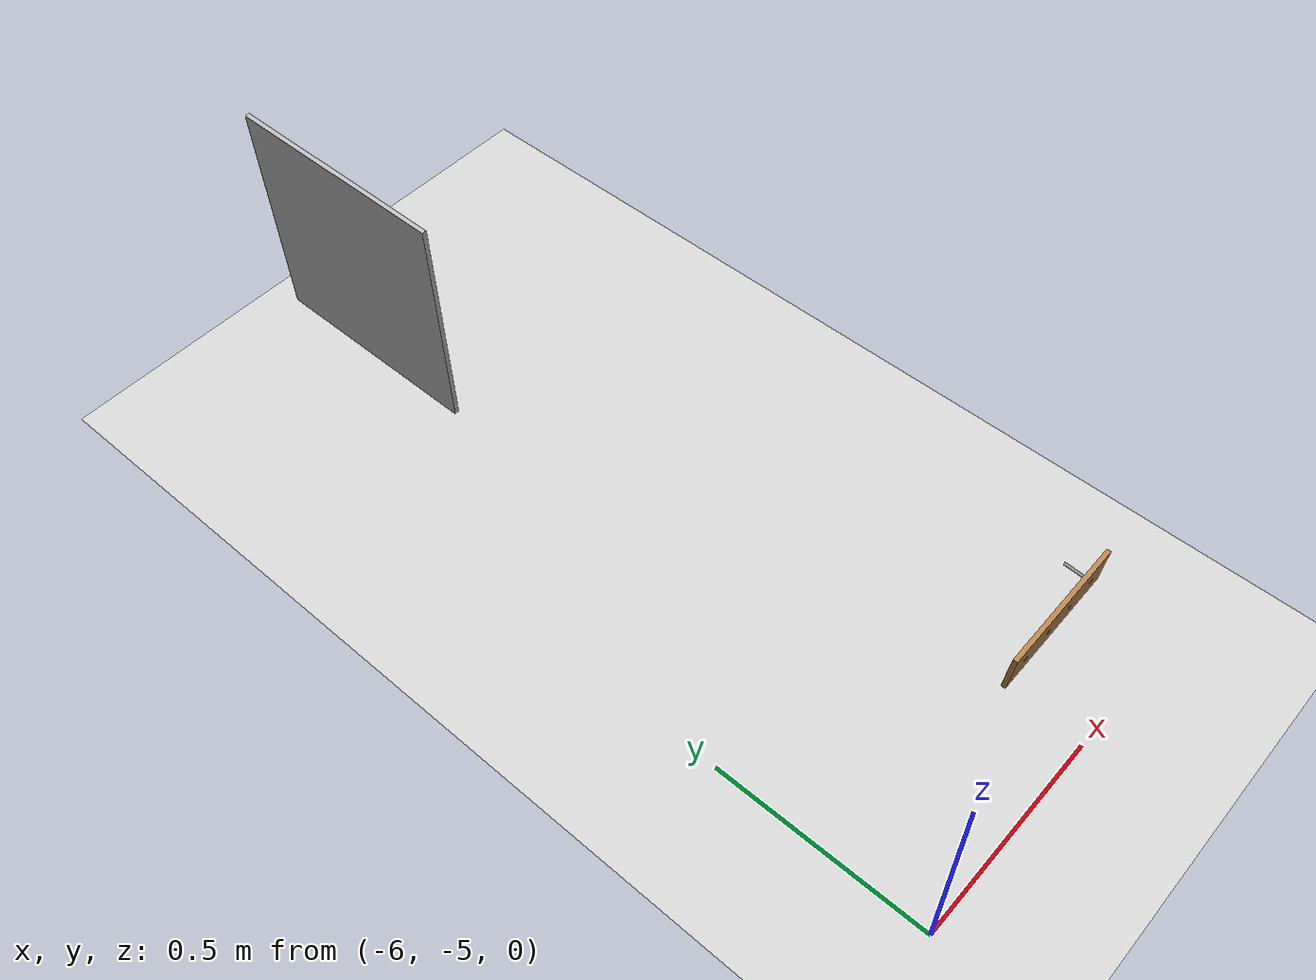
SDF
<sdf version="1.6">
 <world name="default">
  <model name="ground_plane">
   <static>1</static>
   <link name="link">
    <collision name="collision">
     <geometry><plane><normal>0 0 1</normal><size>100 100</size></plane></geometry>
     <surface><friction><ode><mu>100</mu><mu2>50</mu2></ode></friction></surface>
    </collision>
    <visual name="visual">
     <cast_shadows>0</cast_shadows>
     <geometry><plane><normal>0 0 1</normal><size>100 100</size></plane></geometry>
     <material>
      <script><uri>file://media/materials/scripts/gazebo.material</uri><name>Gazebo/Grey</name></script>
     </material>
    </visual>
   </link>
  </model>
  <model name="metal_peg_board_0">
   <link name="base">
    <pose>0 0 0.00523 0 -0 0</pose>
    <inertial>
     <mass>0.2765</mass>
     <inertia>
      <ixx>0.0025148</ixx>
      <ixy>0</ixy>
      <ixz>0</ixz>
      <iyy>0.00024037</iyy>
      <iyz>0</iyz>
      <izz>0.00275013</izz>
     </inertia>
    </inertial>
    <collision name="collision">
     <geometry><box><size>0.1016 0.3302 0.01046</size></box></geometry>
     <surface>
      <contact>
       <poissons_ratio>0.347</poissons_ratio>
       <elastic_modulus>8.8e+09</elastic_modulus>
       <ode><kp>100000</kp><kd>100</kd><max_vel>100</max_vel><min_depth>0.001</min_depth></ode>
      </contact>
      <friction>
       <torsional>
        <coefficient>1</coefficient>
        <use_patch_radius>0</use_patch_radius>
        <surface_radius>0.01</surface_radius>
       </torsional>
      </friction>
     </surface>
    </collision>
    <visual name="visual">
     <geometry><box><size>0.1016 0.3302 0.01046</size></box></geometry>
     <material>
      <script><uri>file://media/materials/scripts/gazebo.material</uri><name>Gazebo/Wood</name></script>
     </material>
    </visual>
    <visual name="tee_nut_1">
     <pose>0 -0.116 0 0 -0 0</pose>
     <geometry><cylinder><radius>0.00635</radius><length>0.0105646</length></cylinder></geometry>
     <material>
      <script><uri>file://media/materials/scripts/gazebo.material</uri><name>Gazebo/Grey</name></script>
     </material>
    </visual>
    <visual name="tee_nut_2">
     <pose>0 -0.038 0 0 -0 0</pose>
     <geometry><cylinder><radius>0.00635</radius><length>0.0105646</length></cylinder></geometry>
     <material>
      <script><uri>file://media/materials/scripts/gazebo.material</uri><name>Gazebo/Grey</name></script>
     </material>
    </visual>
    <visual name="tee_nut_3">
     <pose>0 0.038 0 0 -0 0</pose>
     <geometry><cylinder><radius>0.00635</radius><length>0.0105646</length></cylinder></geometry>
     <material>
      <script><uri>file://media/materials/scripts/gazebo.material</uri><name>Gazebo/Grey</name></script>
     </material>
    </visual>
    <visual name="tee_nut_4">
     <pose>0 0.116 0 0 -0 0</pose>
     <geometry><cylinder><radius>0.00635</radius><length>0.0105646</length></cylinder></geometry>
     <material>
      <script><uri>file://media/materials/scripts/gazebo.material</uri><name>Gazebo/Grey</name></script>
     </material>
    </visual>
    <gravity>0</gravity>
   </link>
   <link name="link">
    <pose>0 0.116 0.031 0 -0 0</pose>
    <inertial>
     <mass>0.0121</mass>
     <inertia>
      <ixx>3.90898e-06</ixx>
      <ixy>0</ixy>
      <ixz>0</ixz>
      <iyy>3.90898e-06</iyy>
      <iyz>0</iyz>
      <izz>6.58845e-08</izz>
     </inertia>
    </inertial>
    <collision name="collision">
     <geometry><cylinder><radius>0.0033</radius><length>0.062</length></cylinder></geometry>
     <surface>
      <contact>
       <poissons_ratio>0.305</poissons_ratio>
       <elastic_modulus>2e+11</elastic_modulus>
       <ode><kp>100000</kp><kd>100</kd><max_vel>100</max_vel><min_depth>0.001</min_depth></ode>
      </contact>
      <friction>
       <torsional>
        <coefficient>1</coefficient>
        <use_patch_radius>0</use_patch_radius>
        <surface_radius>0.01</surface_radius>
       </torsional>
      </friction>
     </surface>
    </collision>
    <visual name="visual">
     <geometry><cylinder><radius>0.0033</radius><length>0.062</length></cylinder></geometry>
     <material>
      <script><uri>file://media/materials/scripts/gazebo.material</uri><name>Gazebo/Grey</name></script>
     </material>
    </visual>
    <gravity>0</gravity>
   </link>
   <joint name="board_peg" type="revolute">
    <parent>wooden_board::base</parent>
    <child>peg::link</child>
    <axis>
     <xyz>0 0 1</xyz>
     <limit><upper>0</upper><lower>0</lower></limit>
     <use_parent_model_frame>0</use_parent_model_frame>
     <dynamics><spring_reference>0</spring_reference><spring_stiffness>0</spring_stiffness></dynamics>
    </axis>
   </joint>
   <pose>-5.38944 -4.84037 0.155304 -0.026695 -1.50927 -1.53567</pose>
  </model>
  <model name="aruco_mark_0">
   <static>1</static>
   <link name="link">
    <visual name="visual">
     <geometry><mesh><uri>model://aruco_mark_0/meshes/aruco_mark_0.dae</uri><scale>1 1 1</scale></mesh></geometry>
    </visual>
   </link>
   <pose>-5.82378 -3.39153 0.221918 0 -0 0</pose>
  </model>
 </world>
</sdf>
